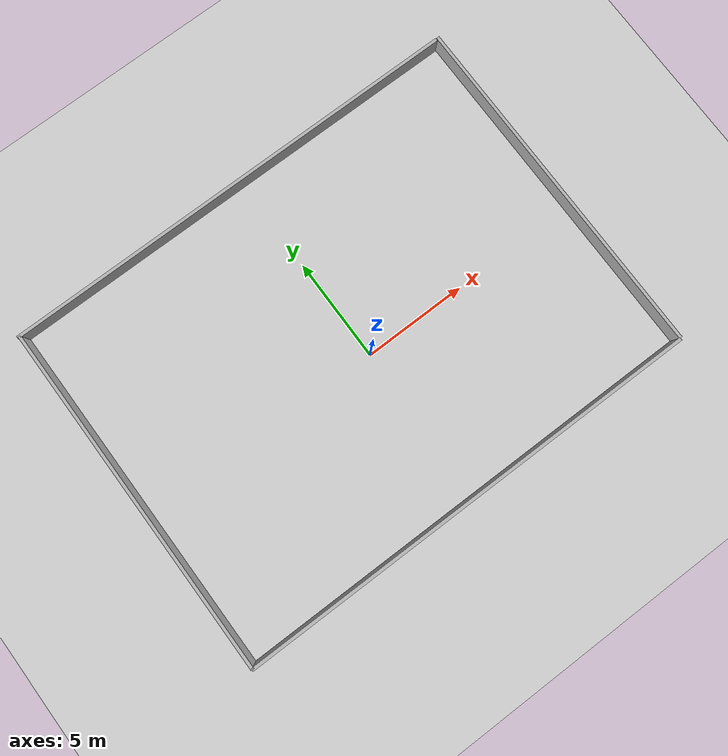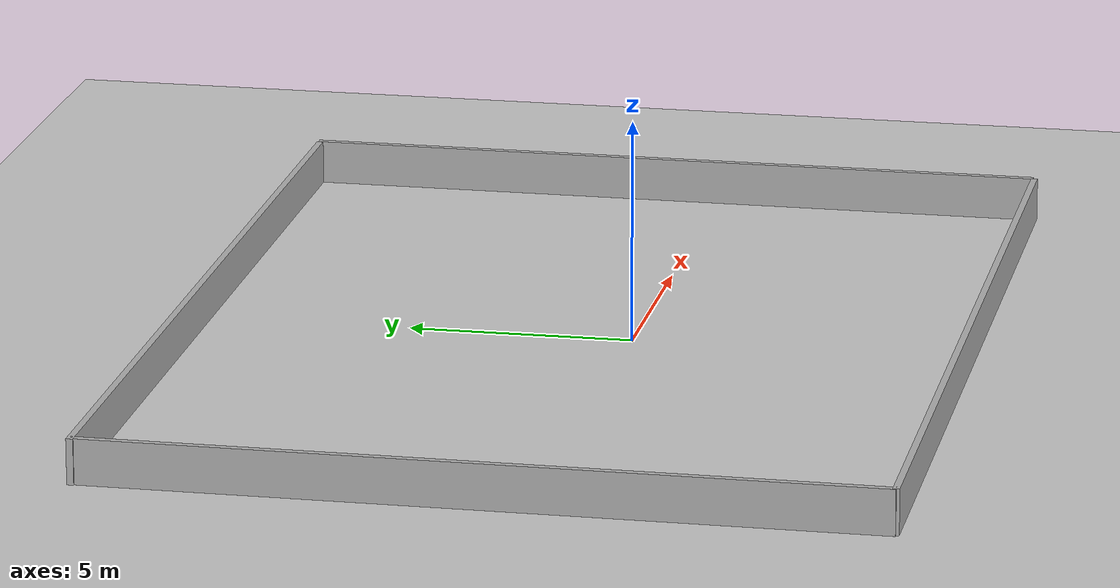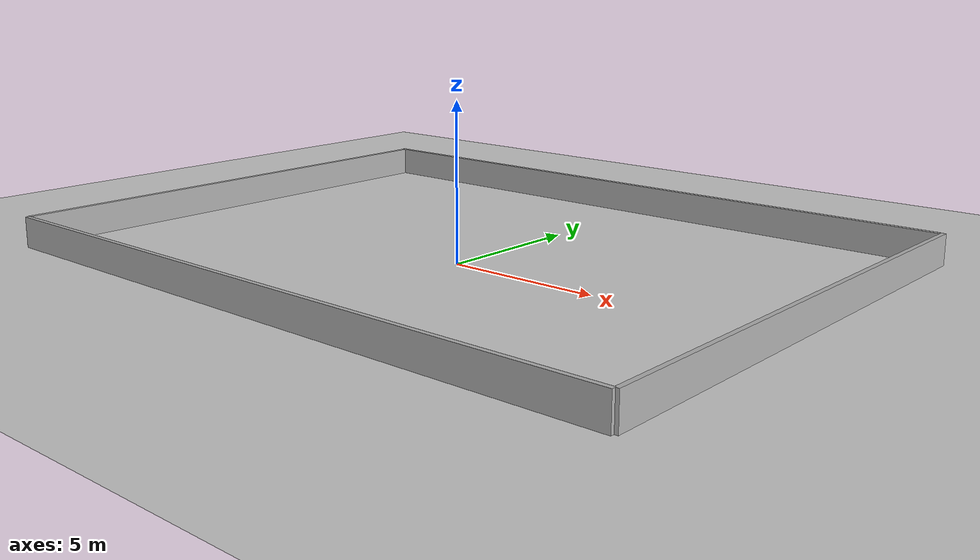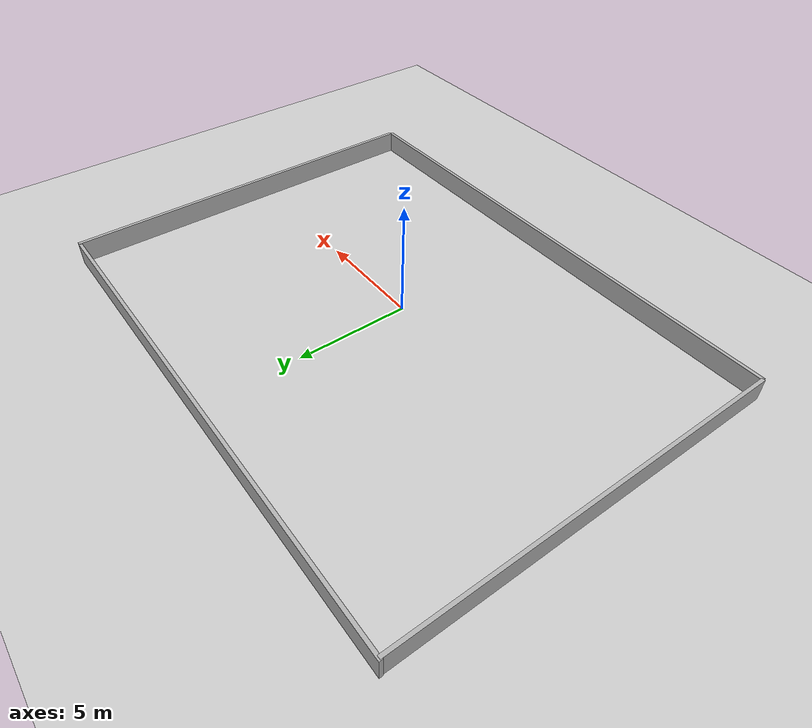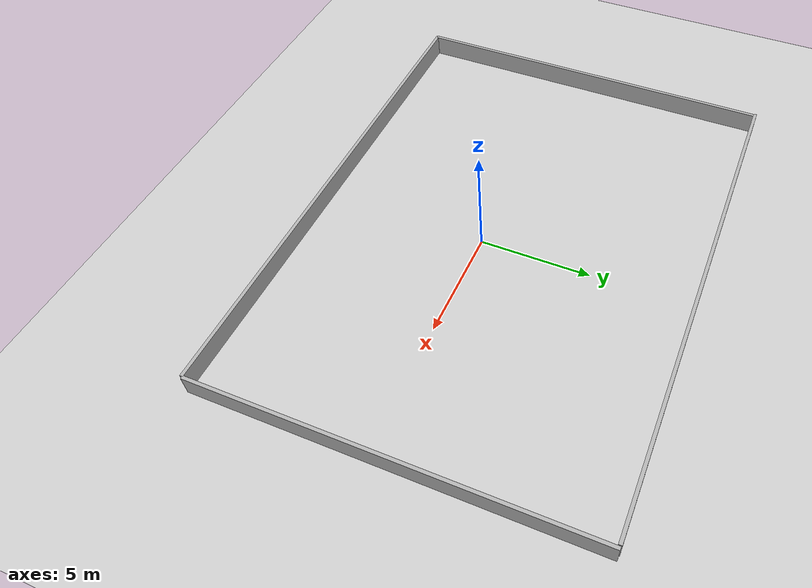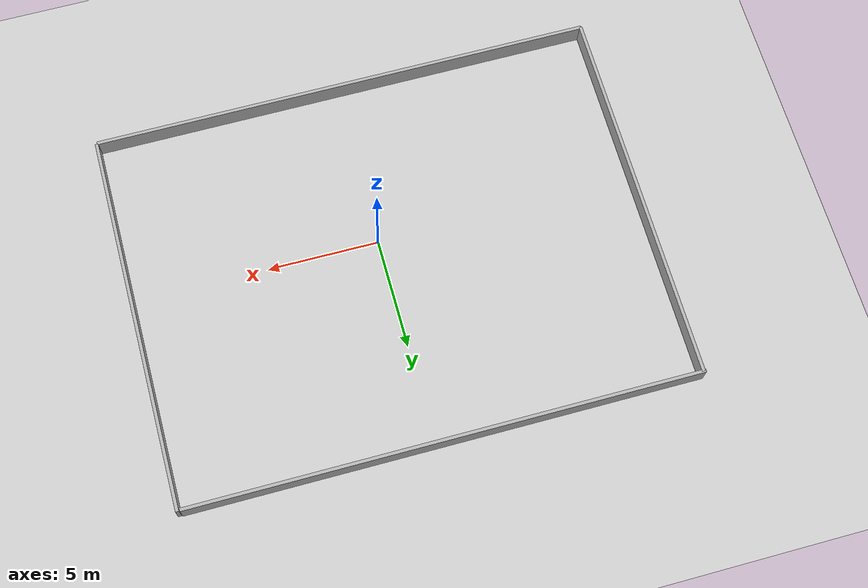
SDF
<?xml version="1.0"?>
<sdf version="1.8">
  <world name="bounded_world">
    <!-- Adapted from the original file:
    https://github.com/berickson/sim_car/blob/main/car_description/worlds/simple.world -->

    <plugin
      filename="ignition-gazebo-physics-system"
      name="ignition::gazebo::systems::Physics">
    </plugin>
    <plugin
      filename="ignition-gazebo-user-commands-system"
      name="ignition::gazebo::systems::UserCommands">
    </plugin>
    <plugin
      filename="ignition-gazebo-scene-broadcaster-system"
      name="ignition::gazebo::systems::SceneBroadcaster">
    </plugin>
    <plugin filename="ignition-gazebo-imu-system"
      name="ignition::gazebo::systems::Imu">
    </plugin>
    <plugin filename="ignition-gazebo-sensors-system"
      name="ignition::gazebo::systems::Sensors">
      <render_engine>ogre2</render_engine>
    </plugin>
    <plugin
      filename="ignition-gazebo-navsat-system"
      name="ignition::gazebo::systems::NavSat">
    </plugin>

    <gui fullscreen='1'>
      <camera name='user_camera'>
        <pose>4.901 1.2552 43.857 -6.4e-05 1.5698 1.84694</pose>
        <view_controller>orbit</view_controller>
        <projection_type>perspective</projection_type>
      </camera>
    </gui>

    <physics type="ode">
      <max_step_size>0.001</max_step_size>
      <real_time_factor>1.0</real_time_factor>
    </physics>

    <light type="directional" name="sun">
      <cast_shadows>1</cast_shadows>
      <pose>0 0 10 0 -0 0</pose>
      <diffuse>0.8 0.8 0.8 1</diffuse>
      <specular>0.2 0.2 0.2 1</specular>
      <attenuation>
        <range>1000</range>
        <constant>0.9</constant>
        <linear>0.01</linear>
        <quadratic>0.001</quadratic>
      </attenuation>
      <direction>-0.5 0.1 -0.9</direction>
      <spot>
        <inner_angle>0</inner_angle>
        <outer_angle>0</outer_angle>
        <falloff>0</falloff>
      </spot>
    </light>

    <gravity>0 0 -9.8</gravity>

    <magnetic_field>6e-06 2.3e-05 -4.2e-05</magnetic_field>

    <atmosphere type='adiabatic' />

    <scene>
      <ambient>0.4 0.4 0.4 1</ambient>
      <background>0.7 0.7 0.7 1</background>
      <shadows>1</shadows>
    </scene>

    <audio>
      <device>default</device>
    </audio>

    <spherical_coordinates>
      <surface_model>EARTH_WGS84</surface_model>
      <latitude_deg>57.713805</latitude_deg>
      <longitude_deg>12.890088</longitude_deg>
      <elevation>203.59</elevation>
      <heading_deg>0</heading_deg>
    </spherical_coordinates>

    <model name='ground_plane'>
      <static>1</static>
      <link name='link'>
        <collision name='collision'>
          <geometry>
            <plane>
              <normal>0 0 1</normal>
              <size>100 100</size>
            </plane>
          </geometry>
          <surface>
            <friction>
              <ode>
                <mu>100</mu>
                <mu2>50</mu2>
              </ode>
              <torsional>
                <ode />
              </torsional>
            </friction>
            <contact>
              <ode />
            </contact>
            <bounce />
          </surface>
          <max_contacts>10</max_contacts>
        </collision>
        <visual name='visual'>
          <cast_shadows>0</cast_shadows>
          <geometry>
            <plane>
              <normal>0 0 1</normal>
              <size>100 100</size>
            </plane>
          </geometry>
          <material>
            <ambient>0.8 0.8 0.8 1</ambient>
            <diffuse>0.8 0.8 0.8 1</diffuse>
            <specular>0.8 0.8 0.8 1</specular>
          </material>
        </visual>
        <self_collide>0</self_collide>
        <enable_wind>0</enable_wind>
        <kinematic>0</kinematic>
      </link>
    </model>

    <model name='outer_walls'>
      <link name='Wall_6_clone'>
        <pose>12.2823 1.06209 0 0 -0 1.5708</pose>
        <self_collide>0</self_collide>
        <enable_wind>0</enable_wind>
        <kinematic>0</kinematic>
        <inertial>
          <inertia>
            <ixx>9.532917</ixx>
            <ixy>0</ixy>
            <ixz>0</ixz>
            <iyy>0.023832</iyy>
            <iyz>0</iyz>
            <izz>9.556749</izz>
          </inertia>
          <mass>1.14395</mass>
          <pose>0 0 0 0 -0 0</pose>
        </inertial>
        <visual name='Wall_6_Visual'>
          <pose>0 0 0.5 0 -0 0</pose>
          <geometry>
            <box>
              <size>17.1178 0.15 1</size>
            </box>
          </geometry>
          <material>
            <ambient>.3 .3 .3 1.0</ambient>
            <diffuse>.7 .7 .7 1.0</diffuse>
            <specular>0.01 0.01 0.01 1.0</specular>
            <shader type='pixel' />
          </material>
          <meta>
            <layer>0</layer>
          </meta>
          <transparency>0</transparency>
          <cast_shadows>1</cast_shadows>
        </visual>
        <collision name='Wall_6_Collision'>
          <laser_retro>0</laser_retro>
          <max_contacts>10</max_contacts>
          <pose>0 0 0.5 0 -0 0</pose>
          <geometry>
            <box>
              <size>17.1178 0.15 1</size>
            </box>
          </geometry>
          <surface>
            <friction>
              <ode>
                <mu>1</mu>
                <mu2>1</mu2>
                <fdir1>0 0 0</fdir1>
                <slip1>0</slip1>
                <slip2>0</slip2>
              </ode>
              <torsional>
                <coefficient>1</coefficient>
                <patch_radius>0</patch_radius>
                <surface_radius>0</surface_radius>
                <use_patch_radius>1</use_patch_radius>
                <ode>
                  <slip>0</slip>
                </ode>
              </torsional>
            </friction>
            <bounce>
              <restitution_coefficient>0</restitution_coefficient>
              <threshold>1e+06</threshold>
            </bounce>
            <contact>
              <collide_without_contact>0</collide_without_contact>
              <collide_without_contact_bitmask>1</collide_without_contact_bitmask>
              <collide_bitmask>1</collide_bitmask>
              <ode>
                <soft_cfm>0</soft_cfm>
                <soft_erp>0.2</soft_erp>
                <kp>1e+13</kp>
                <kd>1</kd>
                <max_vel>0.01</max_vel>
                <min_depth>0</min_depth>
              </ode>
              <bullet>
                <split_impulse>1</split_impulse>
                <split_impulse_penetration_threshold>-0.01</split_impulse_penetration_threshold>
                <soft_cfm>0</soft_cfm>
                <soft_erp>0.2</soft_erp>
                <kp>1e+13</kp>
                <kd>1</kd>
              </bullet>
            </contact>
          </surface>
        </collision>
      </link>
      <link name='Wall_6_clone_clone'>
        <pose>-10.4443 1.02433 0 0 -0 1.5708</pose>
        <self_collide>0</self_collide>
        <enable_wind>0</enable_wind>
        <kinematic>0</kinematic>
        <inertial>
          <inertia>
            <ixx>9.532917</ixx>
            <ixy>0</ixy>
            <ixz>0</ixz>
            <iyy>0.023832</iyy>
            <iyz>0</iyz>
            <izz>9.556749</izz>
          </inertia>
          <mass>1.14395</mass>
          <pose>0 0 0 0 -0 0</pose>
        </inertial>
        <visual name='Wall_6_Visual'>
          <pose>0 0 0.5 0 -0 0</pose>
          <geometry>
            <box>
              <size>17.1178 0.15 1</size>
            </box>
          </geometry>
          <material>
            <ambient>.3 .3 .3 1.0</ambient>
            <diffuse>.7 .7 .7 1.0</diffuse>
            <specular>0.01 0.01 0.01 1.0</specular>
            <shader type='pixel' />
          </material>
          <meta>
            <layer>0</layer>
          </meta>
          <transparency>0</transparency>
          <cast_shadows>1</cast_shadows>
        </visual>
        <collision name='Wall_6_Collision'>
          <laser_retro>0</laser_retro>
          <max_contacts>10</max_contacts>
          <pose>0 0 0.5 0 -0 0</pose>
          <geometry>
            <box>
              <size>17.1178 0.15 1</size>
            </box>
          </geometry>
          <surface>
            <friction>
              <ode>
                <mu>1</mu>
                <mu2>1</mu2>
                <fdir1>0 0 0</fdir1>
                <slip1>0</slip1>
                <slip2>0</slip2>
              </ode>
              <torsional>
                <coefficient>1</coefficient>
                <patch_radius>0</patch_radius>
                <surface_radius>0</surface_radius>
                <use_patch_radius>1</use_patch_radius>
                <ode>
                  <slip>0</slip>
                </ode>
              </torsional>
            </friction>
            <bounce>
              <restitution_coefficient>0</restitution_coefficient>
              <threshold>1e+06</threshold>
            </bounce>
            <contact>
              <collide_without_contact>0</collide_without_contact>
              <collide_without_contact_bitmask>1</collide_without_contact_bitmask>
              <collide_bitmask>1</collide_bitmask>
              <ode>
                <soft_cfm>0</soft_cfm>
                <soft_erp>0.2</soft_erp>
                <kp>1e+13</kp>
                <kd>1</kd>
                <max_vel>0.01</max_vel>
                <min_depth>0</min_depth>
              </ode>
              <bullet>
                <split_impulse>1</split_impulse>
                <split_impulse_penetration_threshold>-0.01</split_impulse_penetration_threshold>
                <soft_cfm>0</soft_cfm>
                <soft_erp>0.2</soft_erp>
                <kp>1e+13</kp>
                <kd>1</kd>
              </bullet>
            </contact>
          </surface>
        </collision>
      </link>
      <link name='Wall_7_clone'>
        <pose>0.814901 9.57474 0 0 -0 3.14159</pose>
        <self_collide>0</self_collide>
        <enable_wind>0</enable_wind>
        <kinematic>0</kinematic>
        <inertial>
          <inertia>
            <ixx>9.532917</ixx>
            <ixy>0</ixy>
            <ixz>0</ixz>
            <iyy>0.023832</iyy>
            <iyz>0</iyz>
            <izz>9.556749</izz>
          </inertia>
          <mass>1.14395</mass>
          <pose>0 0 0 0 -0 0</pose>
        </inertial>
        <visual name='Wall_7_Visual'>
          <pose>0 0 0.5 0 -0 0</pose>
          <geometry>
            <box>
              <size>22.7246 0.15 1</size>
            </box>
          </geometry>
          <material>
            <ambient>.3 .3 .3 1.0</ambient>
            <diffuse>.7 .7 .7 1.0</diffuse>
            <specular>0.01 0.01 0.01 1.0</specular>
            <shader type='pixel' />
          </material>
          <meta>
            <layer>0</layer>
          </meta>
          <transparency>0</transparency>
          <cast_shadows>1</cast_shadows>
        </visual>
        <collision name='Wall_7_Collision'>
          <laser_retro>0</laser_retro>
          <max_contacts>10</max_contacts>
          <pose>0 0 0.5 0 -0 0</pose>
          <geometry>
            <box>
              <size>22.7246 0.15 1</size>
            </box>
          </geometry>
          <surface>
            <friction>
              <ode>
                <mu>1</mu>
                <mu2>1</mu2>
                <fdir1>0 0 0</fdir1>
                <slip1>0</slip1>
                <slip2>0</slip2>
              </ode>
              <torsional>
                <coefficient>1</coefficient>
                <patch_radius>0</patch_radius>
                <surface_radius>0</surface_radius>
                <use_patch_radius>1</use_patch_radius>
                <ode>
                  <slip>0</slip>
                </ode>
              </torsional>
            </friction>
            <bounce>
              <restitution_coefficient>0</restitution_coefficient>
              <threshold>1e+06</threshold>
            </bounce>
            <contact>
              <collide_without_contact>0</collide_without_contact>
              <collide_without_contact_bitmask>1</collide_without_contact_bitmask>
              <collide_bitmask>1</collide_bitmask>
              <ode>
                <soft_cfm>0</soft_cfm>
                <soft_erp>0.2</soft_erp>
                <kp>1e+13</kp>
                <kd>1</kd>
                <max_vel>0.01</max_vel>
                <min_depth>0</min_depth>
              </ode>
              <bullet>
                <split_impulse>1</split_impulse>
                <split_impulse_penetration_threshold>-0.01</split_impulse_penetration_threshold>
                <soft_cfm>0</soft_cfm>
                <soft_erp>0.2</soft_erp>
                <kp>1e+13</kp>
                <kd>1</kd>
              </bullet>
            </contact>
          </surface>
        </collision>
      </link>
      <link name='Wall_7_clone_clone'>
        <pose>0.891179 -7.53134 0 0 -0 3.14159</pose>
        <self_collide>0</self_collide>
        <enable_wind>0</enable_wind>
        <kinematic>0</kinematic>
        <inertial>
          <inertia>
            <ixx>9.532917</ixx>
            <ixy>0</ixy>
            <ixz>0</ixz>
            <iyy>0.023832</iyy>
            <iyz>0</iyz>
            <izz>9.556749</izz>
          </inertia>
          <mass>1.14395</mass>
          <pose>0 0 0 0 -0 0</pose>
        </inertial>
        <visual name='Wall_7_Visual'>
          <pose>0 0 0.5 0 -0 0</pose>
          <geometry>
            <box>
              <size>22.7246 0.15 1</size>
            </box>
          </geometry>
          <material>
            <ambient>.3 .3 .3 1.0</ambient>
            <diffuse>.7 .7 .7 1.0</diffuse>
            <specular>0.01 0.01 0.01 1.0</specular>
            <shader type='pixel' />
          </material>
          <meta>
            <layer>0</layer>
          </meta>
          <transparency>0</transparency>
          <cast_shadows>1</cast_shadows>
        </visual>
        <collision name='Wall_7_Collision'>
          <laser_retro>0</laser_retro>
          <max_contacts>10</max_contacts>
          <pose>0 0 0.5 0 -0 0</pose>
          <geometry>
            <box>
              <size>22.7246 0.15 1</size>
            </box>
          </geometry>
          <surface>
            <friction>
              <ode>
                <mu>1</mu>
                <mu2>1</mu2>
                <fdir1>0 0 0</fdir1>
                <slip1>0</slip1>
                <slip2>0</slip2>
              </ode>
              <torsional>
                <coefficient>1</coefficient>
                <patch_radius>0</patch_radius>
                <surface_radius>0</surface_radius>
                <use_patch_radius>1</use_patch_radius>
                <ode>
                  <slip>0</slip>
                </ode>
              </torsional>
            </friction>
            <bounce>
              <restitution_coefficient>0</restitution_coefficient>
              <threshold>1e+06</threshold>
            </bounce>
            <contact>
              <collide_without_contact>0</collide_without_contact>
              <collide_without_contact_bitmask>1</collide_without_contact_bitmask>
              <collide_bitmask>1</collide_bitmask>
              <ode>
                <soft_cfm>0</soft_cfm>
                <soft_erp>0.2</soft_erp>
                <kp>1e+13</kp>
                <kd>1</kd>
                <max_vel>0.01</max_vel>
                <min_depth>0</min_depth>
              </ode>
              <bullet>
                <split_impulse>1</split_impulse>
                <split_impulse_penetration_threshold>-0.01</split_impulse_penetration_threshold>
                <soft_cfm>0</soft_cfm>
                <soft_erp>0.2</soft_erp>
                <kp>1e+13</kp>
                <kd>1</kd>
              </bullet>
            </contact>
          </surface>
        </collision>
      </link>
      <static>1</static>
      <allow_auto_disable>1</allow_auto_disable>
      <pose>-1.23712 0.00846 0 0 -0 0</pose>
    </model>
  </world>
</sdf>
